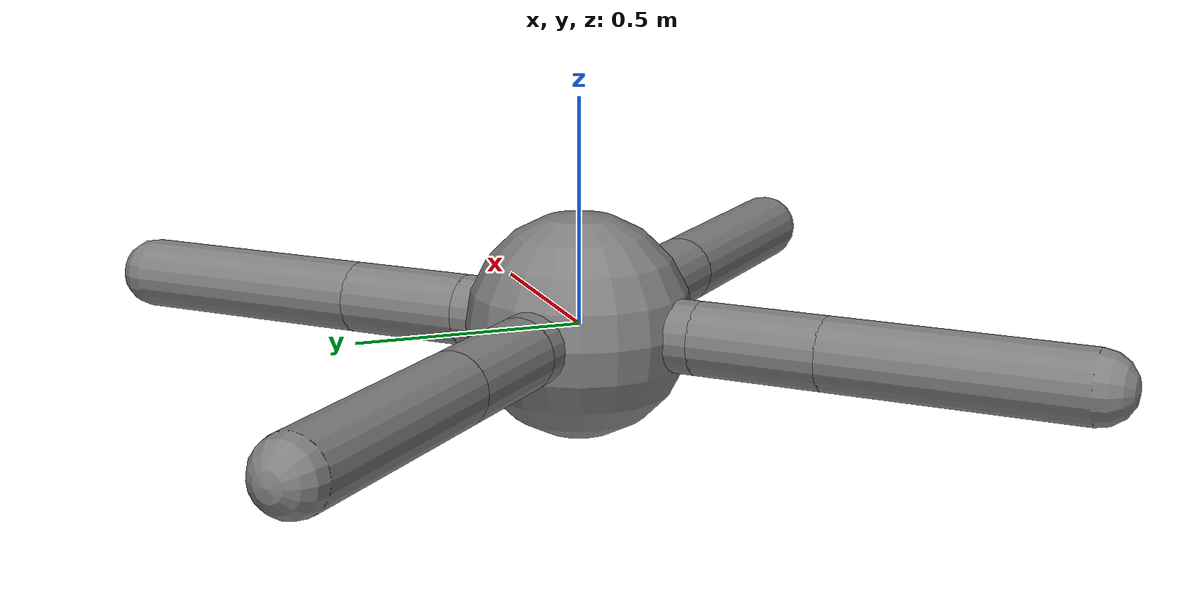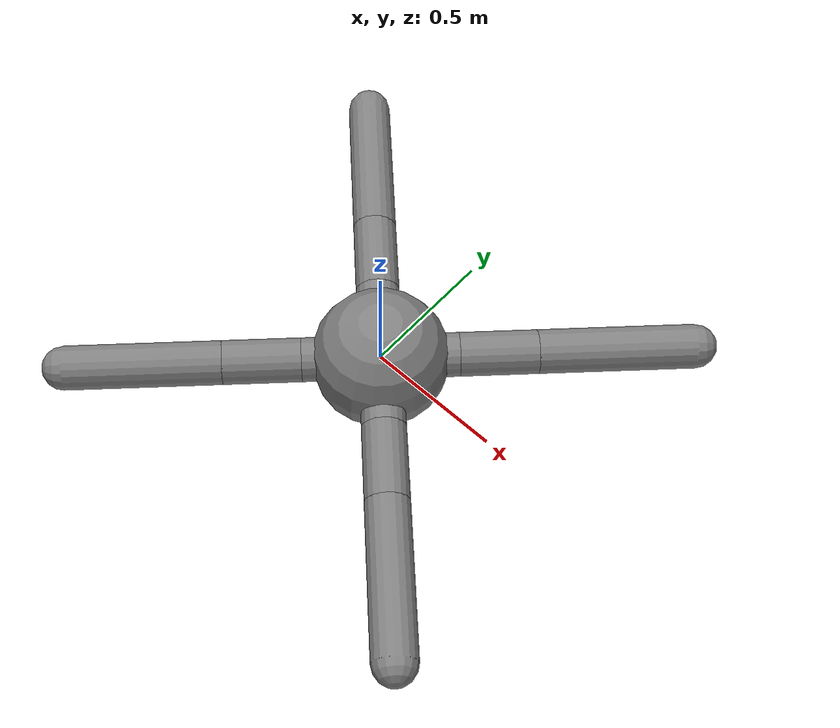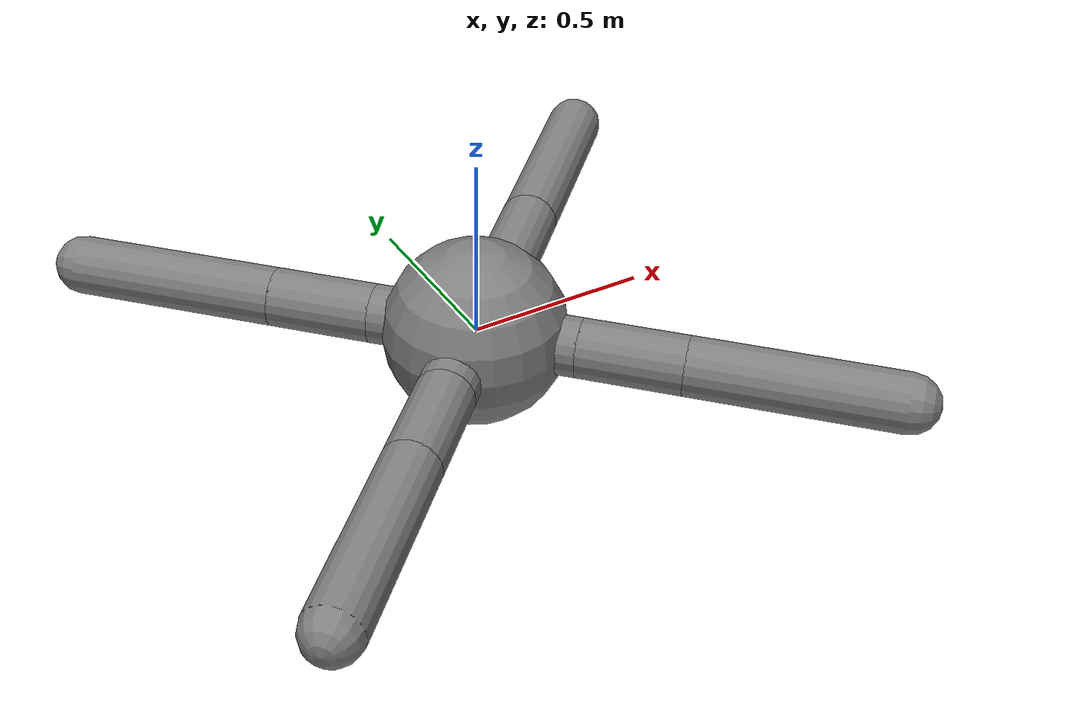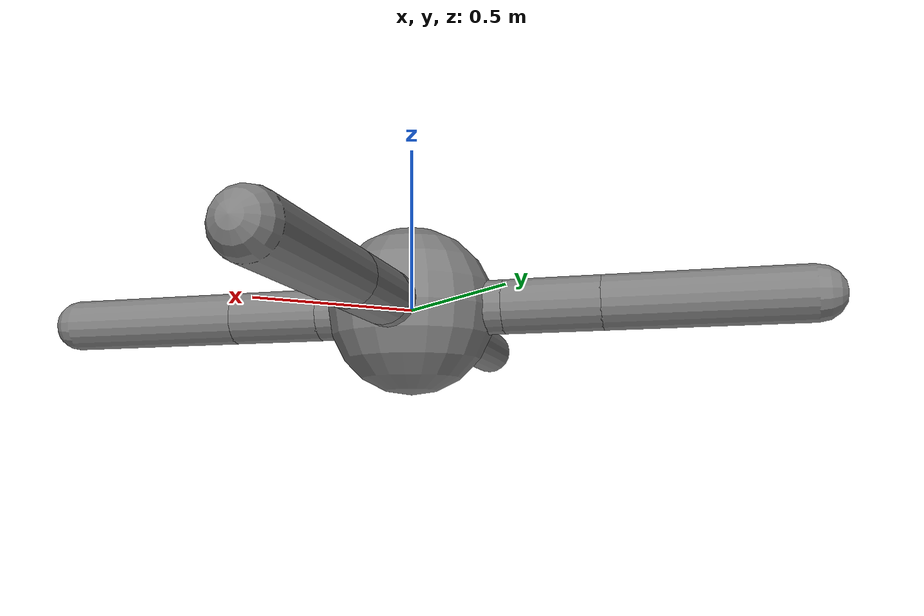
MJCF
<mujoco model="ant">
  <compiler angle="radian"/>

  <option timestep="0.01" impratio="100" gravity="0 0 -9.81" cone="elliptic" ls_iterations="20"/>

  <default>
    <geom friction="1 0.5 0.001" solref="0.01"/>
  </default>

  <worldbody>
    <body name="/World/envs/env_0/Robot/torso">
      <inertial pos="0 0 0" quat="0.5 0.5 -0.5 0.5" mass="0.48388" diaginertia="0.0135857 0.0111204 0.0111204"/>
      <joint name="joint_1" type="free"/>
      <geom name="sphere_1" size="0.25" contype="4" conaffinity="2147483643" friction="0.5 0.25 0.0005"/>
      <geom name="capsule_2" size="0.08 0.141421" pos="0.1 0.1 0" quat="0.653281 -0.270598 0.653281 0.270598" type="capsule" contype="4" conaffinity="2147483643" friction="0.5 0.25 0.0005"/>
      <geom name="capsule_3" size="0.08 0.141421" pos="-0.1 0.1 0" quat="0.270598 -0.653281 0.270598 0.653281" type="capsule" contype="4" conaffinity="2147483643" friction="0.5 0.25 0.0005"/>
      <geom name="capsule_4" size="0.08 0.141421" pos="-0.1 -0.1 0" quat="-0.270598 -0.653281 -0.270598 0.653281" type="capsule" contype="4" conaffinity="2147483643" friction="0.5 0.25 0.0005"/>
      <geom name="capsule_5" size="0.08 0.141421" pos="0.1 -0.1 0" quat="0.653281 0.270598 0.653281 -0.270598" type="capsule" contype="4" conaffinity="2147483643" friction="0.5 0.25 0.0005"/>
      <body name="/World/envs/env_0/Robot/front_left_leg" pos="0.2 0.2 0" quat="0.707107 0 -0.707107 0">
        <inertial pos="0.1 0.1 0" quat="0.653281 0.653281 0.270598 0.270598" mass="0.0391578" diaginertia="0.000567966 0.000567966 0.000118442"/>
        <joint name="/World/envs/env_0/Robot/joints/front_left_leg" pos="0 0 0" axis="1 0 0" limited="true" range="-0.698132 0.698132" armature="0.01"/>
        <geom name="capsule_6" size="0.08 0.141421" pos="1.19209e-08 0.1 -0.1" quat="0 0 0.92388 0.382683" type="capsule" contype="4" conaffinity="2147483643" friction="0.5 0.25 0.0005"/>
        <body name="/World/envs/env_0/Robot/front_left_foot" pos="2.38419e-08 0.2 -0.2" quat="0.270598 0.653282 0.270598 0.653282">
          <inertial pos="0.2 0.2 0" quat="0.653281 0.653281 0.270598 0.270598" mass="0.0675922" diaginertia="0.00267479 0.00267479 0.000209432"/>
          <joint name="/World/envs/env_0/Robot/joints/front_left_foot" pos="0 0 0" axis="1 0 0" limited="true" range="0.523599 1.74533" armature="0.01"/>
          <geom name="capsule_7" size="0.08 0.282843" pos="-4.47035e-08 -0.282843 0" quat="0.5 0.5 0.5 -0.5" type="capsule" contype="4" conaffinity="2147483643" friction="0.5 0.25 0.0005"/>
        </body>
      </body>
      <body name="/World/envs/env_0/Robot/front_right_leg" pos="-0.2 0.2 0" quat="0.707107 0 -0.707107 0">
        <inertial pos="-0.1 0.1 0" quat="0.468235 0.0435784 0.705763 0.529864" mass="0.0391577" diaginertia="0.000567966 0.000567966 0.000118442"/>
        <joint name="/World/envs/env_0/Robot/joints/front_right_leg" pos="0 0 0" axis="1 0 0" limited="true" range="-0.698132 0.698132" armature="0.01"/>
        <geom name="capsule_8" size="0.08 0.141421" pos="-1.19209e-08 0.1 0.1" quat="0 0 0.382683 0.92388" type="capsule" contype="4" conaffinity="2147483643" friction="0.5 0.25 0.0005"/>
        <body name="/World/envs/env_0/Robot/front_right_foot" pos="-2.38419e-08 0.2 0.2" quat="0.653281 0.270598 0.653281 0.270598">
          <inertial pos="-0.2 0.2 0" quat="0.493279 0.00944254 0.707044 0.506632" mass="0.0675922" diaginertia="0.00267479 0.00267479 0.000209432"/>
          <joint name="/World/envs/env_0/Robot/joints/front_right_foot" pos="0 0 0" axis="1 0 0" limited="true" range="-1.74533 -0.523599" armature="0.01"/>
          <geom name="capsule_9" size="0.08 0.282843" pos="-1.49012e-08 0.282843 0" quat="0.5 -0.5 0.5 0.5" type="capsule" contype="4" conaffinity="2147483643" friction="0.5 0.25 0.0005"/>
        </body>
      </body>
      <body name="/World/envs/env_0/Robot/left_back_leg" pos="-0.2 -0.2 0" quat="0.707107 0 -0.707107 0">
        <inertial pos="-0.1 -0.1 0" quat="0.529864 0.705763 0.0435784 0.468235" mass="0.0391577" diaginertia="0.000567966 0.000567966 0.000118442"/>
        <joint name="/World/envs/env_0/Robot/joints/left_back_leg" pos="0 0 0" axis="1 0 0" limited="true" range="-0.698132 0.698132" armature="0.01"/>
        <geom name="capsule_10" size="0.08 0.141421" pos="-1.19209e-08 -0.1 0.1" quat="0 0 -0.382683 0.92388" type="capsule" contype="4" conaffinity="2147483643" friction="0.5 0.25 0.0005"/>
        <body name="/World/envs/env_0/Robot/left_back_foot" pos="-2.38419e-08 -0.2 0.2" quat="0.270598 0.653282 0.270598 0.653282">
          <inertial pos="-0.2 -0.2 0" quat="0.506632 0.707044 0.00944254 0.493279" mass="0.0675922" diaginertia="0.00267479 0.00267479 0.000209432"/>
          <joint name="/World/envs/env_0/Robot/joints/left_back_foot" pos="0 0 0" axis="1 0 0" limited="true" range="-1.74533 -0.523599" armature="0.01"/>
          <geom name="capsule_11" size="0.08 0.282843" pos="4.47035e-08 0.282843 0" quat="0.5 -0.5 0.5 0.5" type="capsule" contype="4" conaffinity="2147483643" friction="0.5 0.25 0.0005"/>
        </body>
      </body>
      <body name="/World/envs/env_0/Robot/right_back_leg" pos="0.2 -0.2 0" quat="0.707107 0 -0.707107 0">
        <inertial pos="0.1 -0.1 0" quat="0.270598 0.270598 0.653281 0.653281" mass="0.0391578" diaginertia="0.000567966 0.000567966 0.000118442"/>
        <joint name="/World/envs/env_0/Robot/joints/right_back_leg" pos="0 0 0" axis="1 0 0" limited="true" range="-0.698132 0.698132" armature="0.01"/>
        <geom name="capsule_12" size="0.08 0.141421" pos="1.19209e-08 -0.1 -0.1" quat="0 0 0.92388 -0.382683" type="capsule" contype="4" conaffinity="2147483643" friction="0.5 0.25 0.0005"/>
        <body name="/World/envs/env_0/Robot/right_back_foot" pos="2.38419e-08 -0.2 -0.2" quat="0.653281 0.270598 0.653281 0.270598">
          <inertial pos="0.2 -0.2 0" quat="0.270598 0.270598 0.653281 0.653281" mass="0.0675922" diaginertia="0.00267479 0.00267479 0.000209432"/>
          <joint name="/World/envs/env_0/Robot/joints/right_back_foot" pos="0 0 0" axis="1 0 0" limited="true" range="0.523599 1.74533" armature="0.01"/>
          <geom name="capsule_13" size="0.08 0.282843" pos="1.49012e-08 -0.282843 0" quat="0.5 0.5 0.5 -0.5" type="capsule" contype="4" conaffinity="2147483643" friction="0.5 0.25 0.0005"/>
        </body>
      </body>
    </body>
  </worldbody>

  <actuator>
    <general joint="/World/envs/env_0/Robot/joints/front_left_leg" forcerange="-1000000 1000000" biastype="affine" gainprm="0"/>
    <general joint="/World/envs/env_0/Robot/joints/front_left_foot" forcerange="-1000000 1000000" biastype="affine" gainprm="0"/>
    <general joint="/World/envs/env_0/Robot/joints/front_right_leg" forcerange="-1000000 1000000" biastype="affine" gainprm="0"/>
    <general joint="/World/envs/env_0/Robot/joints/front_right_foot" forcerange="-1000000 1000000" biastype="affine" gainprm="0"/>
    <general joint="/World/envs/env_0/Robot/joints/left_back_leg" forcerange="-1000000 1000000" biastype="affine" gainprm="0"/>
    <general joint="/World/envs/env_0/Robot/joints/left_back_foot" forcerange="-1000000 1000000" biastype="affine" gainprm="0"/>
    <general joint="/World/envs/env_0/Robot/joints/right_back_leg" forcerange="-1000000 1000000" biastype="affine" gainprm="0"/>
    <general joint="/World/envs/env_0/Robot/joints/right_back_foot" forcerange="-1000000 1000000" biastype="affine" gainprm="0"/>
  </actuator>
</mujoco>
